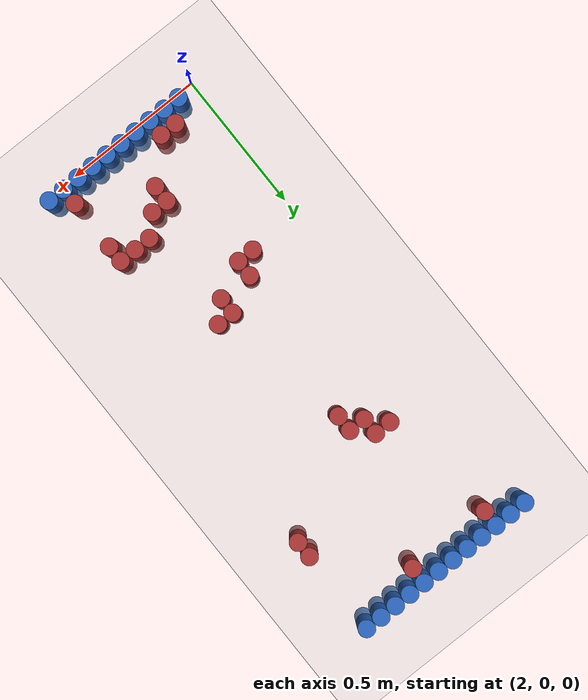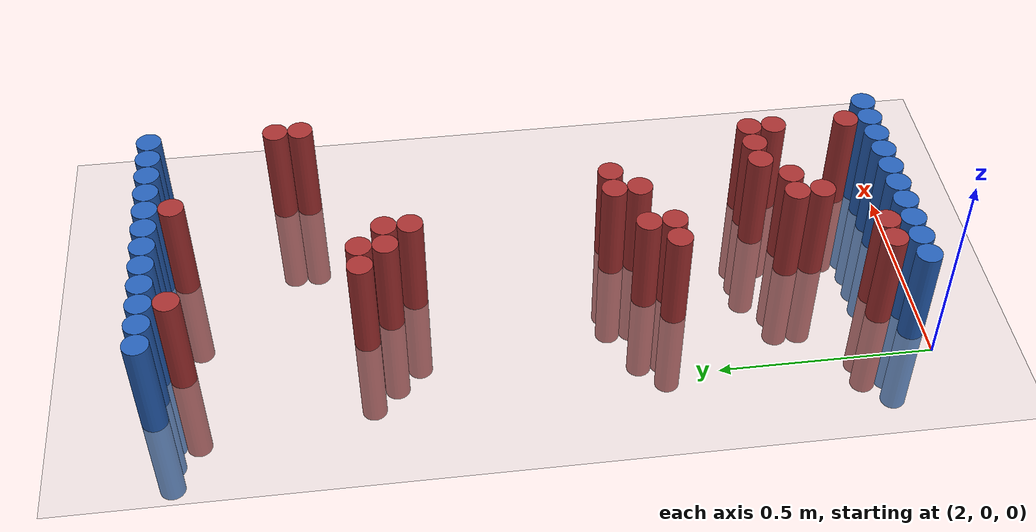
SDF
<sdf version="1.6">
 <world name="default">
  <model name="ground_plane">
   <static>1</static>
   <link name="link">
    <collision name="collision">
     <geometry><plane><normal>0 0 1</normal><size>100 100</size></plane></geometry>
     <surface><friction><ode><mu>100</mu><mu2>50</mu2></ode></friction></surface>
    </collision>
    <visual name="visual">
     <cast_shadows>0</cast_shadows>
     <geometry><plane><normal>0 0 1</normal><size>100 100</size></plane></geometry>
     <material>
      <script><uri>file://media/materials/scripts/gazebo.material</uri><name>Gazebo/Grey</name></script>
     </material>
    </visual>
   </link>
  </model>
  <model name="unit_cylinder_94">
   <static>1</static>
   <pose>2.010000 1.770000 0.000000 0.000000 0.000000 0.000000</pose>
   <link name="link">
    <inertial>
     <mass>1</mass>
     <inertia><ixx>0.145833</ixx><ixy>0</ixy><ixz>0</ixz><iyy>0.145833</iyy><iyz>0</iyz><izz>0.125</izz></inertia>
    </inertial>
    <collision name="collision">
     <geometry><cylinder><radius>0.030000</radius><length>0.5</length></cylinder></geometry>
    </collision>
    <visual name="visual">
     <geometry><cylinder><radius>0.030000</radius><length>0.5</length></cylinder></geometry>
     <material>
      <ambient>0.152000 0.379000 0.720000 1</ambient>
      <diffuse>0.152000 0.379000 0.720000 1</diffuse>
     </material>
     <material>
      <script><name>Gazebo/Grey</name><uri>file://media/materials/scripts/gazebo.material</uri></script>
     </material>
    </visual>
   </link>
  </model>
  <model name="unit_cylinder_95">
   <static>1</static>
   <pose>2.070000 1.770000 0.000000 0.000000 0.000000 0.000000</pose>
   <link name="link">
    <inertial>
     <mass>1</mass>
     <inertia><ixx>0.145833</ixx><ixy>0</ixy><ixz>0</ixz><iyy>0.145833</iyy><iyz>0</iyz><izz>0.125</izz></inertia>
    </inertial>
    <collision name="collision">
     <geometry><cylinder><radius>0.030000</radius><length>0.5</length></cylinder></geometry>
    </collision>
    <visual name="visual">
     <geometry><cylinder><radius>0.030000</radius><length>0.5</length></cylinder></geometry>
     <material>
      <ambient>0.152000 0.379000 0.720000 1</ambient>
      <diffuse>0.152000 0.379000 0.720000 1</diffuse>
     </material>
     <material>
      <script><name>Gazebo/Grey</name><uri>file://media/materials/scripts/gazebo.material</uri></script>
     </material>
    </visual>
   </link>
  </model>
  <model name="unit_cylinder_96">
   <static>1</static>
   <pose>2.130000 1.770000 0.000000 0.000000 0.000000 0.000000</pose>
   <link name="link">
    <inertial>
     <mass>1</mass>
     <inertia><ixx>0.145833</ixx><ixy>0</ixy><ixz>0</ixz><iyy>0.145833</iyy><iyz>0</iyz><izz>0.125</izz></inertia>
    </inertial>
    <collision name="collision">
     <geometry><cylinder><radius>0.030000</radius><length>0.5</length></cylinder></geometry>
    </collision>
    <visual name="visual">
     <geometry><cylinder><radius>0.030000</radius><length>0.5</length></cylinder></geometry>
     <material>
      <ambient>0.152000 0.379000 0.720000 1</ambient>
      <diffuse>0.152000 0.379000 0.720000 1</diffuse>
     </material>
     <material>
      <script><name>Gazebo/Grey</name><uri>file://media/materials/scripts/gazebo.material</uri></script>
     </material>
    </visual>
   </link>
  </model>
  <model name="unit_cylinder_97">
   <static>1</static>
   <pose>2.190000 1.770000 0.000000 0.000000 0.000000 0.000000</pose>
   <link name="link">
    <inertial>
     <mass>1</mass>
     <inertia><ixx>0.145833</ixx><ixy>0</ixy><ixz>0</ixz><iyy>0.145833</iyy><iyz>0</iyz><izz>0.125</izz></inertia>
    </inertial>
    <collision name="collision">
     <geometry><cylinder><radius>0.030000</radius><length>0.5</length></cylinder></geometry>
    </collision>
    <visual name="visual">
     <geometry><cylinder><radius>0.030000</radius><length>0.5</length></cylinder></geometry>
     <material>
      <ambient>0.152000 0.379000 0.720000 1</ambient>
      <diffuse>0.152000 0.379000 0.720000 1</diffuse>
     </material>
     <material>
      <script><name>Gazebo/Grey</name><uri>file://media/materials/scripts/gazebo.material</uri></script>
     </material>
    </visual>
   </link>
  </model>
  <model name="unit_cylinder_98">
   <static>1</static>
   <pose>2.250000 1.770000 0.000000 0.000000 0.000000 0.000000</pose>
   <link name="link">
    <inertial>
     <mass>1</mass>
     <inertia><ixx>0.145833</ixx><ixy>0</ixy><ixz>0</ixz><iyy>0.145833</iyy><iyz>0</iyz><izz>0.125</izz></inertia>
    </inertial>
    <collision name="collision">
     <geometry><cylinder><radius>0.030000</radius><length>0.5</length></cylinder></geometry>
    </collision>
    <visual name="visual">
     <geometry><cylinder><radius>0.030000</radius><length>0.5</length></cylinder></geometry>
     <material>
      <ambient>0.152000 0.379000 0.720000 1</ambient>
      <diffuse>0.152000 0.379000 0.720000 1</diffuse>
     </material>
     <material>
      <script><name>Gazebo/Grey</name><uri>file://media/materials/scripts/gazebo.material</uri></script>
     </material>
    </visual>
   </link>
  </model>
  <model name="unit_cylinder_99">
   <static>1</static>
   <pose>2.310000 1.770000 0.000000 0.000000 0.000000 0.000000</pose>
   <link name="link">
    <inertial>
     <mass>1</mass>
     <inertia><ixx>0.145833</ixx><ixy>0</ixy><ixz>0</ixz><iyy>0.145833</iyy><iyz>0</iyz><izz>0.125</izz></inertia>
    </inertial>
    <collision name="collision">
     <geometry><cylinder><radius>0.030000</radius><length>0.5</length></cylinder></geometry>
    </collision>
    <visual name="visual">
     <geometry><cylinder><radius>0.030000</radius><length>0.5</length></cylinder></geometry>
     <material>
      <ambient>0.152000 0.379000 0.720000 1</ambient>
      <diffuse>0.152000 0.379000 0.720000 1</diffuse>
     </material>
     <material>
      <script><name>Gazebo/Grey</name><uri>file://media/materials/scripts/gazebo.material</uri></script>
     </material>
    </visual>
   </link>
  </model>
  <model name="unit_cylinder_100">
   <static>1</static>
   <pose>2.370000 1.770000 0.000000 0.000000 0.000000 0.000000</pose>
   <link name="link">
    <inertial>
     <mass>1</mass>
     <inertia><ixx>0.145833</ixx><ixy>0</ixy><ixz>0</ixz><iyy>0.145833</iyy><iyz>0</iyz><izz>0.125</izz></inertia>
    </inertial>
    <collision name="collision">
     <geometry><cylinder><radius>0.030000</radius><length>0.5</length></cylinder></geometry>
    </collision>
    <visual name="visual">
     <geometry><cylinder><radius>0.030000</radius><length>0.5</length></cylinder></geometry>
     <material>
      <ambient>0.152000 0.379000 0.720000 1</ambient>
      <diffuse>0.152000 0.379000 0.720000 1</diffuse>
     </material>
     <material>
      <script><name>Gazebo/Grey</name><uri>file://media/materials/scripts/gazebo.material</uri></script>
     </material>
    </visual>
   </link>
  </model>
  <model name="unit_cylinder_101">
   <static>1</static>
   <pose>2.430000 1.770000 0.000000 0.000000 0.000000 0.000000</pose>
   <link name="link">
    <inertial>
     <mass>1</mass>
     <inertia><ixx>0.145833</ixx><ixy>0</ixy><ixz>0</ixz><iyy>0.145833</iyy><iyz>0</iyz><izz>0.125</izz></inertia>
    </inertial>
    <collision name="collision">
     <geometry><cylinder><radius>0.030000</radius><length>0.5</length></cylinder></geometry>
    </collision>
    <visual name="visual">
     <geometry><cylinder><radius>0.030000</radius><length>0.5</length></cylinder></geometry>
     <material>
      <ambient>0.152000 0.379000 0.720000 1</ambient>
      <diffuse>0.152000 0.379000 0.720000 1</diffuse>
     </material>
     <material>
      <script><name>Gazebo/Grey</name><uri>file://media/materials/scripts/gazebo.material</uri></script>
     </material>
    </visual>
   </link>
  </model>
  <model name="unit_cylinder_102">
   <static>1</static>
   <pose>2.490000 1.770000 0.000000 0.000000 0.000000 0.000000</pose>
   <link name="link">
    <inertial>
     <mass>1</mass>
     <inertia><ixx>0.145833</ixx><ixy>0</ixy><ixz>0</ixz><iyy>0.145833</iyy><iyz>0</iyz><izz>0.125</izz></inertia>
    </inertial>
    <collision name="collision">
     <geometry><cylinder><radius>0.030000</radius><length>0.5</length></cylinder></geometry>
    </collision>
    <visual name="visual">
     <geometry><cylinder><radius>0.030000</radius><length>0.5</length></cylinder></geometry>
     <material>
      <ambient>0.152000 0.379000 0.720000 1</ambient>
      <diffuse>0.152000 0.379000 0.720000 1</diffuse>
     </material>
     <material>
      <script><name>Gazebo/Grey</name><uri>file://media/materials/scripts/gazebo.material</uri></script>
     </material>
    </visual>
   </link>
  </model>
  <model name="unit_cylinder_103">
   <static>1</static>
   <pose>2.550000 1.770000 0.000000 0.000000 0.000000 0.000000</pose>
   <link name="link">
    <inertial>
     <mass>1</mass>
     <inertia><ixx>0.145833</ixx><ixy>0</ixy><ixz>0</ixz><iyy>0.145833</iyy><iyz>0</iyz><izz>0.125</izz></inertia>
    </inertial>
    <collision name="collision">
     <geometry><cylinder><radius>0.030000</radius><length>0.5</length></cylinder></geometry>
    </collision>
    <visual name="visual">
     <geometry><cylinder><radius>0.030000</radius><length>0.5</length></cylinder></geometry>
     <material>
      <ambient>0.152000 0.379000 0.720000 1</ambient>
      <diffuse>0.152000 0.379000 0.720000 1</diffuse>
     </material>
     <material>
      <script><name>Gazebo/Grey</name><uri>file://media/materials/scripts/gazebo.material</uri></script>
     </material>
    </visual>
   </link>
  </model>
  <model name="unit_cylinder_104">
   <static>1</static>
   <pose>2.610000 1.770000 0.000000 0.000000 0.000000 0.000000</pose>
   <link name="link">
    <inertial>
     <mass>1</mass>
     <inertia><ixx>0.145833</ixx><ixy>0</ixy><ixz>0</ixz><iyy>0.145833</iyy><iyz>0</iyz><izz>0.125</izz></inertia>
    </inertial>
    <collision name="collision">
     <geometry><cylinder><radius>0.030000</radius><length>0.5</length></cylinder></geometry>
    </collision>
    <visual name="visual">
     <geometry><cylinder><radius>0.030000</radius><length>0.5</length></cylinder></geometry>
     <material>
      <ambient>0.152000 0.379000 0.720000 1</ambient>
      <diffuse>0.152000 0.379000 0.720000 1</diffuse>
     </material>
     <material>
      <script><name>Gazebo/Grey</name><uri>file://media/materials/scripts/gazebo.material</uri></script>
     </material>
    </visual>
   </link>
  </model>
  <model name="unit_cylinder_105">
   <static>1</static>
   <pose>2.670000 1.770000 0.000000 0.000000 0.000000 0.000000</pose>
   <link name="link">
    <inertial>
     <mass>1</mass>
     <inertia><ixx>0.145833</ixx><ixy>0</ixy><ixz>0</ixz><iyy>0.145833</iyy><iyz>0</iyz><izz>0.125</izz></inertia>
    </inertial>
    <collision name="collision">
     <geometry><cylinder><radius>0.030000</radius><length>0.5</length></cylinder></geometry>
    </collision>
    <visual name="visual">
     <geometry><cylinder><radius>0.030000</radius><length>0.5</length></cylinder></geometry>
     <material>
      <ambient>0.152000 0.379000 0.720000 1</ambient>
      <diffuse>0.152000 0.379000 0.720000 1</diffuse>
     </material>
     <material>
      <script><name>Gazebo/Grey</name><uri>file://media/materials/scripts/gazebo.material</uri></script>
     </material>
    </visual>
   </link>
  </model>
  <model name="unit_cylinder_125">
   <static>1</static>
   <pose>2.130000 1.710000 0.000000 0.000000 0.000000 0.000000</pose>
   <link name="link">
    <inertial>
     <mass>1</mass>
     <inertia><ixx>0.145833</ixx><ixy>0</ixy><ixz>0</ixz><iyy>0.145833</iyy><iyz>0</iyz><izz>0.125</izz></inertia>
    </inertial>
    <collision name="collision">
     <geometry><cylinder><radius>0.030000</radius><length>0.5</length></cylinder></geometry>
    </collision>
    <visual name="visual">
     <geometry><cylinder><radius>0.030000</radius><length>0.5</length></cylinder></geometry>
     <material>
      <ambient>0.648000 0.192000 0.192000 1</ambient>
      <diffuse>0.648000 0.192000 0.192000 1</diffuse>
     </material>
     <material>
      <script><name>Gazebo/Grey</name><uri>file://media/materials/scripts/gazebo.material</uri></script>
     </material>
    </visual>
   </link>
  </model>
  <model name="unit_cylinder_126">
   <static>1</static>
   <pose>2.430000 1.710000 0.000000 0.000000 0.000000 0.000000</pose>
   <link name="link">
    <inertial>
     <mass>1</mass>
     <inertia><ixx>0.145833</ixx><ixy>0</ixy><ixz>0</ixz><iyy>0.145833</iyy><iyz>0</iyz><izz>0.125</izz></inertia>
    </inertial>
    <collision name="collision">
     <geometry><cylinder><radius>0.030000</radius><length>0.5</length></cylinder></geometry>
    </collision>
    <visual name="visual">
     <geometry><cylinder><radius>0.030000</radius><length>0.5</length></cylinder></geometry>
     <material>
      <ambient>0.648000 0.192000 0.192000 1</ambient>
      <diffuse>0.648000 0.192000 0.192000 1</diffuse>
     </material>
     <material>
      <script><name>Gazebo/Grey</name><uri>file://media/materials/scripts/gazebo.material</uri></script>
     </material>
    </visual>
   </link>
  </model>
  <model name="unit_cylinder_131">
   <static>1</static>
   <pose>2.670000 1.470000 0.000000 0.000000 0.000000 0.000000</pose>
   <link name="link">
    <inertial>
     <mass>1</mass>
     <inertia><ixx>0.145833</ixx><ixy>0</ixy><ixz>0</ixz><iyy>0.145833</iyy><iyz>0</iyz><izz>0.125</izz></inertia>
    </inertial>
    <collision name="collision">
     <geometry><cylinder><radius>0.030000</radius><length>0.5</length></cylinder></geometry>
    </collision>
    <visual name="visual">
     <geometry><cylinder><radius>0.030000</radius><length>0.5</length></cylinder></geometry>
     <material>
      <ambient>0.648000 0.192000 0.192000 1</ambient>
      <diffuse>0.648000 0.192000 0.192000 1</diffuse>
     </material>
     <material>
      <script><name>Gazebo/Grey</name><uri>file://media/materials/scripts/gazebo.material</uri></script>
     </material>
    </visual>
   </link>
  </model>
  <model name="unit_cylinder_132">
   <static>1</static>
   <pose>2.670000 1.410000 0.000000 0.000000 0.000000 0.000000</pose>
   <link name="link">
    <inertial>
     <mass>1</mass>
     <inertia><ixx>0.145833</ixx><ixy>0</ixy><ixz>0</ixz><iyy>0.145833</iyy><iyz>0</iyz><izz>0.125</izz></inertia>
    </inertial>
    <collision name="collision">
     <geometry><cylinder><radius>0.030000</radius><length>0.5</length></cylinder></geometry>
    </collision>
    <visual name="visual">
     <geometry><cylinder><radius>0.030000</radius><length>0.5</length></cylinder></geometry>
     <material>
      <ambient>0.648000 0.192000 0.192000 1</ambient>
      <diffuse>0.648000 0.192000 0.192000 1</diffuse>
     </material>
     <material>
      <script><name>Gazebo/Grey</name><uri>file://media/materials/scripts/gazebo.material</uri></script>
     </material>
    </visual>
   </link>
  </model>
  <model name="unit_cylinder_140">
   <static>1</static>
   <pose>2.190000 1.290000 0.000000 0.000000 0.000000 0.000000</pose>
   <link name="link">
    <inertial>
     <mass>1</mass>
     <inertia><ixx>0.145833</ixx><ixy>0</ixy><ixz>0</ixz><iyy>0.145833</iyy><iyz>0</iyz><izz>0.125</izz></inertia>
    </inertial>
    <collision name="collision">
     <geometry><cylinder><radius>0.030000</radius><length>0.5</length></cylinder></geometry>
    </collision>
    <visual name="visual">
     <geometry><cylinder><radius>0.030000</radius><length>0.5</length></cylinder></geometry>
     <material>
      <ambient>0.648000 0.192000 0.192000 1</ambient>
      <diffuse>0.648000 0.192000 0.192000 1</diffuse>
     </material>
     <material>
      <script><name>Gazebo/Grey</name><uri>file://media/materials/scripts/gazebo.material</uri></script>
     </material>
    </visual>
   </link>
  </model>
  <model name="unit_cylinder_141">
   <static>1</static>
   <pose>2.250000 1.290000 0.000000 0.000000 0.000000 0.000000</pose>
   <link name="link">
    <inertial>
     <mass>1</mass>
     <inertia><ixx>0.145833</ixx><ixy>0</ixy><ixz>0</ixz><iyy>0.145833</iyy><iyz>0</iyz><izz>0.125</izz></inertia>
    </inertial>
    <collision name="collision">
     <geometry><cylinder><radius>0.030000</radius><length>0.5</length></cylinder></geometry>
    </collision>
    <visual name="visual">
     <geometry><cylinder><radius>0.030000</radius><length>0.5</length></cylinder></geometry>
     <material>
      <ambient>0.648000 0.192000 0.192000 1</ambient>
      <diffuse>0.648000 0.192000 0.192000 1</diffuse>
     </material>
     <material>
      <script><name>Gazebo/Grey</name><uri>file://media/materials/scripts/gazebo.material</uri></script>
     </material>
    </visual>
   </link>
  </model>
  <model name="unit_cylinder_145">
   <static>1</static>
   <pose>2.250000 1.230000 0.000000 0.000000 0.000000 0.000000</pose>
   <link name="link">
    <inertial>
     <mass>1</mass>
     <inertia><ixx>0.145833</ixx><ixy>0</ixy><ixz>0</ixz><iyy>0.145833</iyy><iyz>0</iyz><izz>0.125</izz></inertia>
    </inertial>
    <collision name="collision">
     <geometry><cylinder><radius>0.030000</radius><length>0.5</length></cylinder></geometry>
    </collision>
    <visual name="visual">
     <geometry><cylinder><radius>0.030000</radius><length>0.5</length></cylinder></geometry>
     <material>
      <ambient>0.648000 0.192000 0.192000 1</ambient>
      <diffuse>0.648000 0.192000 0.192000 1</diffuse>
     </material>
     <material>
      <script><name>Gazebo/Grey</name><uri>file://media/materials/scripts/gazebo.material</uri></script>
     </material>
    </visual>
   </link>
  </model>
  <model name="unit_cylinder_146">
   <static>1</static>
   <pose>2.310000 1.230000 0.000000 0.000000 0.000000 0.000000</pose>
   <link name="link">
    <inertial>
     <mass>1</mass>
     <inertia><ixx>0.145833</ixx><ixy>0</ixy><ixz>0</ixz><iyy>0.145833</iyy><iyz>0</iyz><izz>0.125</izz></inertia>
    </inertial>
    <collision name="collision">
     <geometry><cylinder><radius>0.030000</radius><length>0.5</length></cylinder></geometry>
    </collision>
    <visual name="visual">
     <geometry><cylinder><radius>0.030000</radius><length>0.5</length></cylinder></geometry>
     <material>
      <ambient>0.648000 0.192000 0.192000 1</ambient>
      <diffuse>0.648000 0.192000 0.192000 1</diffuse>
     </material>
     <material>
      <script><name>Gazebo/Grey</name><uri>file://media/materials/scripts/gazebo.material</uri></script>
     </material>
    </visual>
   </link>
  </model>
  <model name="unit_cylinder_152">
   <static>1</static>
   <pose>2.310000 1.170000 0.000000 0.000000 0.000000 0.000000</pose>
   <link name="link">
    <inertial>
     <mass>1</mass>
     <inertia><ixx>0.145833</ixx><ixy>0</ixy><ixz>0</ixz><iyy>0.145833</iyy><iyz>0</iyz><izz>0.125</izz></inertia>
    </inertial>
    <collision name="collision">
     <geometry><cylinder><radius>0.030000</radius><length>0.5</length></cylinder></geometry>
    </collision>
    <visual name="visual">
     <geometry><cylinder><radius>0.030000</radius><length>0.5</length></cylinder></geometry>
     <material>
      <ambient>0.648000 0.192000 0.192000 1</ambient>
      <diffuse>0.648000 0.192000 0.192000 1</diffuse>
     </material>
     <material>
      <script><name>Gazebo/Grey</name><uri>file://media/materials/scripts/gazebo.material</uri></script>
     </material>
    </visual>
   </link>
  </model>
  <model name="unit_cylinder_165">
   <static>1</static>
   <pose>2.370000 0.690000 0.000000 0.000000 0.000000 0.000000</pose>
   <link name="link">
    <inertial>
     <mass>1</mass>
     <inertia><ixx>0.145833</ixx><ixy>0</ixy><ixz>0</ixz><iyy>0.145833</iyy><iyz>0</iyz><izz>0.125</izz></inertia>
    </inertial>
    <collision name="collision">
     <geometry><cylinder><radius>0.030000</radius><length>0.5</length></cylinder></geometry>
    </collision>
    <visual name="visual">
     <geometry><cylinder><radius>0.030000</radius><length>0.5</length></cylinder></geometry>
     <material>
      <ambient>0.648000 0.192000 0.192000 1</ambient>
      <diffuse>0.648000 0.192000 0.192000 1</diffuse>
     </material>
     <material>
      <script><name>Gazebo/Grey</name><uri>file://media/materials/scripts/gazebo.material</uri></script>
     </material>
    </visual>
   </link>
  </model>
  <model name="unit_cylinder_166">
   <static>1</static>
   <pose>2.430000 0.690000 0.000000 0.000000 0.000000 0.000000</pose>
   <link name="link">
    <inertial>
     <mass>1</mass>
     <inertia><ixx>0.145833</ixx><ixy>0</ixy><ixz>0</ixz><iyy>0.145833</iyy><iyz>0</iyz><izz>0.125</izz></inertia>
    </inertial>
    <collision name="collision">
     <geometry><cylinder><radius>0.030000</radius><length>0.5</length></cylinder></geometry>
    </collision>
    <visual name="visual">
     <geometry><cylinder><radius>0.030000</radius><length>0.5</length></cylinder></geometry>
     <material>
      <ambient>0.648000 0.192000 0.192000 1</ambient>
      <diffuse>0.648000 0.192000 0.192000 1</diffuse>
     </material>
     <material>
      <script><name>Gazebo/Grey</name><uri>file://media/materials/scripts/gazebo.material</uri></script>
     </material>
    </visual>
   </link>
  </model>
  <model name="unit_cylinder_167">
   <static>1</static>
   <pose>2.250000 0.630000 0.000000 0.000000 0.000000 0.000000</pose>
   <link name="link">
    <inertial>
     <mass>1</mass>
     <inertia><ixx>0.145833</ixx><ixy>0</ixy><ixz>0</ixz><iyy>0.145833</iyy><iyz>0</iyz><izz>0.125</izz></inertia>
    </inertial>
    <collision name="collision">
     <geometry><cylinder><radius>0.030000</radius><length>0.5</length></cylinder></geometry>
    </collision>
    <visual name="visual">
     <geometry><cylinder><radius>0.030000</radius><length>0.5</length></cylinder></geometry>
     <material>
      <ambient>0.648000 0.192000 0.192000 1</ambient>
      <diffuse>0.648000 0.192000 0.192000 1</diffuse>
     </material>
     <material>
      <script><name>Gazebo/Grey</name><uri>file://media/materials/scripts/gazebo.material</uri></script>
     </material>
    </visual>
   </link>
  </model>
  <model name="unit_cylinder_168">
   <static>1</static>
   <pose>2.370000 0.630000 0.000000 0.000000 0.000000 0.000000</pose>
   <link name="link">
    <inertial>
     <mass>1</mass>
     <inertia><ixx>0.145833</ixx><ixy>0</ixy><ixz>0</ixz><iyy>0.145833</iyy><iyz>0</iyz><izz>0.125</izz></inertia>
    </inertial>
    <collision name="collision">
     <geometry><cylinder><radius>0.030000</radius><length>0.5</length></cylinder></geometry>
    </collision>
    <visual name="visual">
     <geometry><cylinder><radius>0.030000</radius><length>0.5</length></cylinder></geometry>
     <material>
      <ambient>0.648000 0.192000 0.192000 1</ambient>
      <diffuse>0.648000 0.192000 0.192000 1</diffuse>
     </material>
     <material>
      <script><name>Gazebo/Grey</name><uri>file://media/materials/scripts/gazebo.material</uri></script>
     </material>
    </visual>
   </link>
  </model>
  <model name="unit_cylinder_170">
   <static>1</static>
   <pose>2.190000 0.570000 0.000000 0.000000 0.000000 0.000000</pose>
   <link name="link">
    <inertial>
     <mass>1</mass>
     <inertia><ixx>0.145833</ixx><ixy>0</ixy><ixz>0</ixz><iyy>0.145833</iyy><iyz>0</iyz><izz>0.125</izz></inertia>
    </inertial>
    <collision name="collision">
     <geometry><cylinder><radius>0.030000</radius><length>0.5</length></cylinder></geometry>
    </collision>
    <visual name="visual">
     <geometry><cylinder><radius>0.030000</radius><length>0.5</length></cylinder></geometry>
     <material>
      <ambient>0.648000 0.192000 0.192000 1</ambient>
      <diffuse>0.648000 0.192000 0.192000 1</diffuse>
     </material>
     <material>
      <script><name>Gazebo/Grey</name><uri>file://media/materials/scripts/gazebo.material</uri></script>
     </material>
    </visual>
   </link>
  </model>
  <model name="unit_cylinder_171">
   <static>1</static>
   <pose>2.250000 0.570000 0.000000 0.000000 0.000000 0.000000</pose>
   <link name="link">
    <inertial>
     <mass>1</mass>
     <inertia><ixx>0.145833</ixx><ixy>0</ixy><ixz>0</ixz><iyy>0.145833</iyy><iyz>0</iyz><izz>0.125</izz></inertia>
    </inertial>
    <collision name="collision">
     <geometry><cylinder><radius>0.030000</radius><length>0.5</length></cylinder></geometry>
    </collision>
    <visual name="visual">
     <geometry><cylinder><radius>0.030000</radius><length>0.5</length></cylinder></geometry>
     <material>
      <ambient>0.648000 0.192000 0.192000 1</ambient>
      <diffuse>0.648000 0.192000 0.192000 1</diffuse>
     </material>
     <material>
      <script><name>Gazebo/Grey</name><uri>file://media/materials/scripts/gazebo.material</uri></script>
     </material>
    </visual>
   </link>
  </model>
  <model name="unit_cylinder_182">
   <static>1</static>
   <pose>2.430000 0.330000 0.000000 0.000000 0.000000 0.000000</pose>
   <link name="link">
    <inertial>
     <mass>1</mass>
     <inertia><ixx>0.145833</ixx><ixy>0</ixy><ixz>0</ixz><iyy>0.145833</iyy><iyz>0</iyz><izz>0.125</izz></inertia>
    </inertial>
    <collision name="collision">
     <geometry><cylinder><radius>0.030000</radius><length>0.5</length></cylinder></geometry>
    </collision>
    <visual name="visual">
     <geometry><cylinder><radius>0.030000</radius><length>0.5</length></cylinder></geometry>
     <material>
      <ambient>0.648000 0.192000 0.192000 1</ambient>
      <diffuse>0.648000 0.192000 0.192000 1</diffuse>
     </material>
     <material>
      <script><name>Gazebo/Grey</name><uri>file://media/materials/scripts/gazebo.material</uri></script>
     </material>
    </visual>
   </link>
  </model>
  <model name="unit_cylinder_183">
   <static>1</static>
   <pose>2.490000 0.330000 0.000000 0.000000 0.000000 0.000000</pose>
   <link name="link">
    <inertial>
     <mass>1</mass>
     <inertia><ixx>0.145833</ixx><ixy>0</ixy><ixz>0</ixz><iyy>0.145833</iyy><iyz>0</iyz><izz>0.125</izz></inertia>
    </inertial>
    <collision name="collision">
     <geometry><cylinder><radius>0.030000</radius><length>0.5</length></cylinder></geometry>
    </collision>
    <visual name="visual">
     <geometry><cylinder><radius>0.030000</radius><length>0.5</length></cylinder></geometry>
     <material>
      <ambient>0.648000 0.192000 0.192000 1</ambient>
      <diffuse>0.648000 0.192000 0.192000 1</diffuse>
     </material>
     <material>
      <script><name>Gazebo/Grey</name><uri>file://media/materials/scripts/gazebo.material</uri></script>
     </material>
    </visual>
   </link>
  </model>
  <model name="unit_cylinder_184">
   <static>1</static>
   <pose>2.550000 0.330000 0.000000 0.000000 0.000000 0.000000</pose>
   <link name="link">
    <inertial>
     <mass>1</mass>
     <inertia><ixx>0.145833</ixx><ixy>0</ixy><ixz>0</ixz><iyy>0.145833</iyy><iyz>0</iyz><izz>0.125</izz></inertia>
    </inertial>
    <collision name="collision">
     <geometry><cylinder><radius>0.030000</radius><length>0.5</length></cylinder></geometry>
    </collision>
    <visual name="visual">
     <geometry><cylinder><radius>0.030000</radius><length>0.5</length></cylinder></geometry>
     <material>
      <ambient>0.648000 0.192000 0.192000 1</ambient>
      <diffuse>0.648000 0.192000 0.192000 1</diffuse>
     </material>
     <material>
      <script><name>Gazebo/Grey</name><uri>file://media/materials/scripts/gazebo.material</uri></script>
     </material>
    </visual>
   </link>
  </model>
  <model name="unit_cylinder_186">
   <static>1</static>
   <pose>2.310000 0.270000 0.000000 0.000000 0.000000 0.000000</pose>
   <link name="link">
    <inertial>
     <mass>1</mass>
     <inertia><ixx>0.145833</ixx><ixy>0</ixy><ixz>0</ixz><iyy>0.145833</iyy><iyz>0</iyz><izz>0.125</izz></inertia>
    </inertial>
    <collision name="collision">
     <geometry><cylinder><radius>0.030000</radius><length>0.5</length></cylinder></geometry>
    </collision>
    <visual name="visual">
     <geometry><cylinder><radius>0.030000</radius><length>0.5</length></cylinder></geometry>
     <material>
      <ambient>0.648000 0.192000 0.192000 1</ambient>
      <diffuse>0.648000 0.192000 0.192000 1</diffuse>
     </material>
     <material>
      <script><name>Gazebo/Grey</name><uri>file://media/materials/scripts/gazebo.material</uri></script>
     </material>
    </visual>
   </link>
  </model>
  <model name="unit_cylinder_187">
   <static>1</static>
   <pose>2.370000 0.270000 0.000000 0.000000 0.000000 0.000000</pose>
   <link name="link">
    <inertial>
     <mass>1</mass>
     <inertia><ixx>0.145833</ixx><ixy>0</ixy><ixz>0</ixz><iyy>0.145833</iyy><iyz>0</iyz><izz>0.125</izz></inertia>
    </inertial>
    <collision name="collision">
     <geometry><cylinder><radius>0.030000</radius><length>0.5</length></cylinder></geometry>
    </collision>
    <visual name="visual">
     <geometry><cylinder><radius>0.030000</radius><length>0.5</length></cylinder></geometry>
     <material>
      <ambient>0.648000 0.192000 0.192000 1</ambient>
      <diffuse>0.648000 0.192000 0.192000 1</diffuse>
     </material>
     <material>
      <script><name>Gazebo/Grey</name><uri>file://media/materials/scripts/gazebo.material</uri></script>
     </material>
    </visual>
   </link>
  </model>
  <model name="unit_cylinder_188">
   <static>1</static>
   <pose>2.550000 0.270000 0.000000 0.000000 0.000000 0.000000</pose>
   <link name="link">
    <inertial>
     <mass>1</mass>
     <inertia><ixx>0.145833</ixx><ixy>0</ixy><ixz>0</ixz><iyy>0.145833</iyy><iyz>0</iyz><izz>0.125</izz></inertia>
    </inertial>
    <collision name="collision">
     <geometry><cylinder><radius>0.030000</radius><length>0.5</length></cylinder></geometry>
    </collision>
    <visual name="visual">
     <geometry><cylinder><radius>0.030000</radius><length>0.5</length></cylinder></geometry>
     <material>
      <ambient>0.648000 0.192000 0.192000 1</ambient>
      <diffuse>0.648000 0.192000 0.192000 1</diffuse>
     </material>
     <material>
      <script><name>Gazebo/Grey</name><uri>file://media/materials/scripts/gazebo.material</uri></script>
     </material>
    </visual>
   </link>
  </model>
  <model name="unit_cylinder_191">
   <static>1</static>
   <pose>2.310000 0.210000 0.000000 0.000000 0.000000 0.000000</pose>
   <link name="link">
    <inertial>
     <mass>1</mass>
     <inertia><ixx>0.145833</ixx><ixy>0</ixy><ixz>0</ixz><iyy>0.145833</iyy><iyz>0</iyz><izz>0.125</izz></inertia>
    </inertial>
    <collision name="collision">
     <geometry><cylinder><radius>0.030000</radius><length>0.5</length></cylinder></geometry>
    </collision>
    <visual name="visual">
     <geometry><cylinder><radius>0.030000</radius><length>0.5</length></cylinder></geometry>
     <material>
      <ambient>0.648000 0.192000 0.192000 1</ambient>
      <diffuse>0.648000 0.192000 0.192000 1</diffuse>
     </material>
     <material>
      <script><name>Gazebo/Grey</name><uri>file://media/materials/scripts/gazebo.material</uri></script>
     </material>
    </visual>
   </link>
  </model>
  <model name="unit_cylinder_195">
   <static>1</static>
   <pose>2.130000 0.090000 0.000000 0.000000 0.000000 0.000000</pose>
   <link name="link">
    <inertial>
     <mass>1</mass>
     <inertia><ixx>0.145833</ixx><ixy>0</ixy><ixz>0</ixz><iyy>0.145833</iyy><iyz>0</iyz><izz>0.125</izz></inertia>
    </inertial>
    <collision name="collision">
     <geometry><cylinder><radius>0.030000</radius><length>0.5</length></cylinder></geometry>
    </collision>
    <visual name="visual">
     <geometry><cylinder><radius>0.030000</radius><length>0.5</length></cylinder></geometry>
     <material>
      <ambient>0.648000 0.192000 0.192000 1</ambient>
      <diffuse>0.648000 0.192000 0.192000 1</diffuse>
     </material>
     <material>
      <script><name>Gazebo/Grey</name><uri>file://media/materials/scripts/gazebo.material</uri></script>
     </material>
    </visual>
   </link>
  </model>
  <model name="unit_cylinder_196">
   <static>1</static>
   <pose>2.190000 0.090000 0.000000 0.000000 0.000000 0.000000</pose>
   <link name="link">
    <inertial>
     <mass>1</mass>
     <inertia><ixx>0.145833</ixx><ixy>0</ixy><ixz>0</ixz><iyy>0.145833</iyy><iyz>0</iyz><izz>0.125</izz></inertia>
    </inertial>
    <collision name="collision">
     <geometry><cylinder><radius>0.030000</radius><length>0.5</length></cylinder></geometry>
    </collision>
    <visual name="visual">
     <geometry><cylinder><radius>0.030000</radius><length>0.5</length></cylinder></geometry>
     <material>
      <ambient>0.648000 0.192000 0.192000 1</ambient>
      <diffuse>0.648000 0.192000 0.192000 1</diffuse>
     </material>
     <material>
      <script><name>Gazebo/Grey</name><uri>file://media/materials/scripts/gazebo.material</uri></script>
     </material>
    </visual>
   </link>
  </model>
  <model name="unit_cylinder_197">
   <static>1</static>
   <pose>2.550000 0.090000 0.000000 0.000000 0.000000 0.000000</pose>
   <link name="link">
    <inertial>
     <mass>1</mass>
     <inertia><ixx>0.145833</ixx><ixy>0</ixy><ixz>0</ixz><iyy>0.145833</iyy><iyz>0</iyz><izz>0.125</izz></inertia>
    </inertial>
    <collision name="collision">
     <geometry><cylinder><radius>0.030000</radius><length>0.5</length></cylinder></geometry>
    </collision>
    <visual name="visual">
     <geometry><cylinder><radius>0.030000</radius><length>0.5</length></cylinder></geometry>
     <material>
      <ambient>0.648000 0.192000 0.192000 1</ambient>
      <diffuse>0.648000 0.192000 0.192000 1</diffuse>
     </material>
     <material>
      <script><name>Gazebo/Grey</name><uri>file://media/materials/scripts/gazebo.material</uri></script>
     </material>
    </visual>
   </link>
  </model>
  <model name="unit_cylinder_205">
   <static>1</static>
   <pose>2.070000 0.030000 0.000000 0.000000 0.000000 0.000000</pose>
   <link name="link">
    <inertial>
     <mass>1</mass>
     <inertia><ixx>0.145833</ixx><ixy>0</ixy><ixz>0</ixz><iyy>0.145833</iyy><iyz>0</iyz><izz>0.125</izz></inertia>
    </inertial>
    <collision name="collision">
     <geometry><cylinder><radius>0.030000</radius><length>0.5</length></cylinder></geometry>
    </collision>
    <visual name="visual">
     <geometry><cylinder><radius>0.030000</radius><length>0.5</length></cylinder></geometry>
     <material>
      <ambient>0.152000 0.379000 0.720000 1</ambient>
      <diffuse>0.152000 0.379000 0.720000 1</diffuse>
     </material>
     <material>
      <script><name>Gazebo/Grey</name><uri>file://media/materials/scripts/gazebo.material</uri></script>
     </material>
    </visual>
   </link>
  </model>
  <model name="unit_cylinder_206">
   <static>1</static>
   <pose>2.130000 0.030000 0.000000 0.000000 0.000000 0.000000</pose>
   <link name="link">
    <inertial>
     <mass>1</mass>
     <inertia><ixx>0.145833</ixx><ixy>0</ixy><ixz>0</ixz><iyy>0.145833</iyy><iyz>0</iyz><izz>0.125</izz></inertia>
    </inertial>
    <collision name="collision">
     <geometry><cylinder><radius>0.030000</radius><length>0.5</length></cylinder></geometry>
    </collision>
    <visual name="visual">
     <geometry><cylinder><radius>0.030000</radius><length>0.5</length></cylinder></geometry>
     <material>
      <ambient>0.152000 0.379000 0.720000 1</ambient>
      <diffuse>0.152000 0.379000 0.720000 1</diffuse>
     </material>
     <material>
      <script><name>Gazebo/Grey</name><uri>file://media/materials/scripts/gazebo.material</uri></script>
     </material>
    </visual>
   </link>
  </model>
  <model name="unit_cylinder_207">
   <static>1</static>
   <pose>2.190000 0.030000 0.000000 0.000000 0.000000 0.000000</pose>
   <link name="link">
    <inertial>
     <mass>1</mass>
     <inertia><ixx>0.145833</ixx><ixy>0</ixy><ixz>0</ixz><iyy>0.145833</iyy><iyz>0</iyz><izz>0.125</izz></inertia>
    </inertial>
    <collision name="collision">
     <geometry><cylinder><radius>0.030000</radius><length>0.5</length></cylinder></geometry>
    </collision>
    <visual name="visual">
     <geometry><cylinder><radius>0.030000</radius><length>0.5</length></cylinder></geometry>
     <material>
      <ambient>0.152000 0.379000 0.720000 1</ambient>
      <diffuse>0.152000 0.379000 0.720000 1</diffuse>
     </material>
     <material>
      <script><name>Gazebo/Grey</name><uri>file://media/materials/scripts/gazebo.material</uri></script>
     </material>
    </visual>
   </link>
  </model>
  <model name="unit_cylinder_208">
   <static>1</static>
   <pose>2.250000 0.030000 0.000000 0.000000 0.000000 0.000000</pose>
   <link name="link">
    <inertial>
     <mass>1</mass>
     <inertia><ixx>0.145833</ixx><ixy>0</ixy><ixz>0</ixz><iyy>0.145833</iyy><iyz>0</iyz><izz>0.125</izz></inertia>
    </inertial>
    <collision name="collision">
     <geometry><cylinder><radius>0.030000</radius><length>0.5</length></cylinder></geometry>
    </collision>
    <visual name="visual">
     <geometry><cylinder><radius>0.030000</radius><length>0.5</length></cylinder></geometry>
     <material>
      <ambient>0.152000 0.379000 0.720000 1</ambient>
      <diffuse>0.152000 0.379000 0.720000 1</diffuse>
     </material>
     <material>
      <script><name>Gazebo/Grey</name><uri>file://media/materials/scripts/gazebo.material</uri></script>
     </material>
    </visual>
   </link>
  </model>
  <model name="unit_cylinder_209">
   <static>1</static>
   <pose>2.310000 0.030000 0.000000 0.000000 0.000000 0.000000</pose>
   <link name="link">
    <inertial>
     <mass>1</mass>
     <inertia><ixx>0.145833</ixx><ixy>0</ixy><ixz>0</ixz><iyy>0.145833</iyy><iyz>0</iyz><izz>0.125</izz></inertia>
    </inertial>
    <collision name="collision">
     <geometry><cylinder><radius>0.030000</radius><length>0.5</length></cylinder></geometry>
    </collision>
    <visual name="visual">
     <geometry><cylinder><radius>0.030000</radius><length>0.5</length></cylinder></geometry>
     <material>
      <ambient>0.152000 0.379000 0.720000 1</ambient>
      <diffuse>0.152000 0.379000 0.720000 1</diffuse>
     </material>
     <material>
      <script><name>Gazebo/Grey</name><uri>file://media/materials/scripts/gazebo.material</uri></script>
     </material>
    </visual>
   </link>
  </model>
  <model name="unit_cylinder_210">
   <static>1</static>
   <pose>2.370000 0.030000 0.000000 0.000000 0.000000 0.000000</pose>
   <link name="link">
    <inertial>
     <mass>1</mass>
     <inertia><ixx>0.145833</ixx><ixy>0</ixy><ixz>0</ixz><iyy>0.145833</iyy><iyz>0</iyz><izz>0.125</izz></inertia>
    </inertial>
    <collision name="collision">
     <geometry><cylinder><radius>0.030000</radius><length>0.5</length></cylinder></geometry>
    </collision>
    <visual name="visual">
     <geometry><cylinder><radius>0.030000</radius><length>0.5</length></cylinder></geometry>
     <material>
      <ambient>0.152000 0.379000 0.720000 1</ambient>
      <diffuse>0.152000 0.379000 0.720000 1</diffuse>
     </material>
     <material>
      <script><name>Gazebo/Grey</name><uri>file://media/materials/scripts/gazebo.material</uri></script>
     </material>
    </visual>
   </link>
  </model>
  <model name="unit_cylinder_211">
   <static>1</static>
   <pose>2.430000 0.030000 0.000000 0.000000 0.000000 0.000000</pose>
   <link name="link">
    <inertial>
     <mass>1</mass>
     <inertia><ixx>0.145833</ixx><ixy>0</ixy><ixz>0</ixz><iyy>0.145833</iyy><iyz>0</iyz><izz>0.125</izz></inertia>
    </inertial>
    <collision name="collision">
     <geometry><cylinder><radius>0.030000</radius><length>0.5</length></cylinder></geometry>
    </collision>
    <visual name="visual">
     <geometry><cylinder><radius>0.030000</radius><length>0.5</length></cylinder></geometry>
     <material>
      <ambient>0.152000 0.379000 0.720000 1</ambient>
      <diffuse>0.152000 0.379000 0.720000 1</diffuse>
     </material>
     <material>
      <script><name>Gazebo/Grey</name><uri>file://media/materials/scripts/gazebo.material</uri></script>
     </material>
    </visual>
   </link>
  </model>
  <model name="unit_cylinder_212">
   <static>1</static>
   <pose>2.490000 0.030000 0.000000 0.000000 0.000000 0.000000</pose>
   <link name="link">
    <inertial>
     <mass>1</mass>
     <inertia><ixx>0.145833</ixx><ixy>0</ixy><ixz>0</ixz><iyy>0.145833</iyy><iyz>0</iyz><izz>0.125</izz></inertia>
    </inertial>
    <collision name="collision">
     <geometry><cylinder><radius>0.030000</radius><length>0.5</length></cylinder></geometry>
    </collision>
    <visual name="visual">
     <geometry><cylinder><radius>0.030000</radius><length>0.5</length></cylinder></geometry>
     <material>
      <ambient>0.152000 0.379000 0.720000 1</ambient>
      <diffuse>0.152000 0.379000 0.720000 1</diffuse>
     </material>
     <material>
      <script><name>Gazebo/Grey</name><uri>file://media/materials/scripts/gazebo.material</uri></script>
     </material>
    </visual>
   </link>
  </model>
  <model name="unit_cylinder_213">
   <static>1</static>
   <pose>2.550000 0.030000 0.000000 0.000000 0.000000 0.000000</pose>
   <link name="link">
    <inertial>
     <mass>1</mass>
     <inertia><ixx>0.145833</ixx><ixy>0</ixy><ixz>0</ixz><iyy>0.145833</iyy><iyz>0</iyz><izz>0.125</izz></inertia>
    </inertial>
    <collision name="collision">
     <geometry><cylinder><radius>0.030000</radius><length>0.5</length></cylinder></geometry>
    </collision>
    <visual name="visual">
     <geometry><cylinder><radius>0.030000</radius><length>0.5</length></cylinder></geometry>
     <material>
      <ambient>0.152000 0.379000 0.720000 1</ambient>
      <diffuse>0.152000 0.379000 0.720000 1</diffuse>
     </material>
     <material>
      <script><name>Gazebo/Grey</name><uri>file://media/materials/scripts/gazebo.material</uri></script>
     </material>
    </visual>
   </link>
  </model>
  <model name="unit_cylinder_214">
   <static>1</static>
   <pose>2.610000 0.030000 0.000000 0.000000 0.000000 0.000000</pose>
   <link name="link">
    <inertial>
     <mass>1</mass>
     <inertia><ixx>0.145833</ixx><ixy>0</ixy><ixz>0</ixz><iyy>0.145833</iyy><iyz>0</iyz><izz>0.125</izz></inertia>
    </inertial>
    <collision name="collision">
     <geometry><cylinder><radius>0.030000</radius><length>0.5</length></cylinder></geometry>
    </collision>
    <visual name="visual">
     <geometry><cylinder><radius>0.030000</radius><length>0.5</length></cylinder></geometry>
     <material>
      <ambient>0.152000 0.379000 0.720000 1</ambient>
      <diffuse>0.152000 0.379000 0.720000 1</diffuse>
     </material>
     <material>
      <script><name>Gazebo/Grey</name><uri>file://media/materials/scripts/gazebo.material</uri></script>
     </material>
    </visual>
   </link>
  </model>
 </world>
</sdf>
